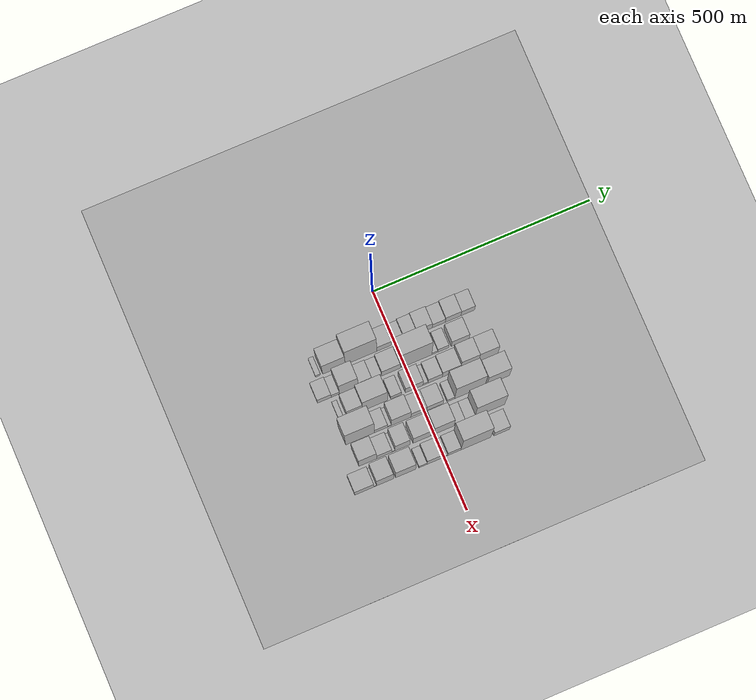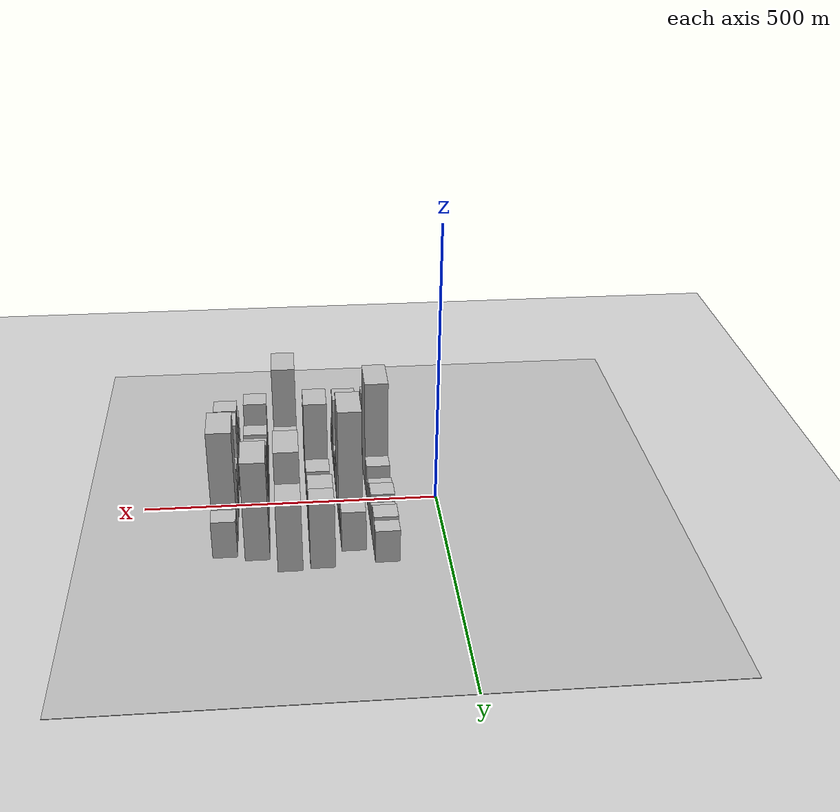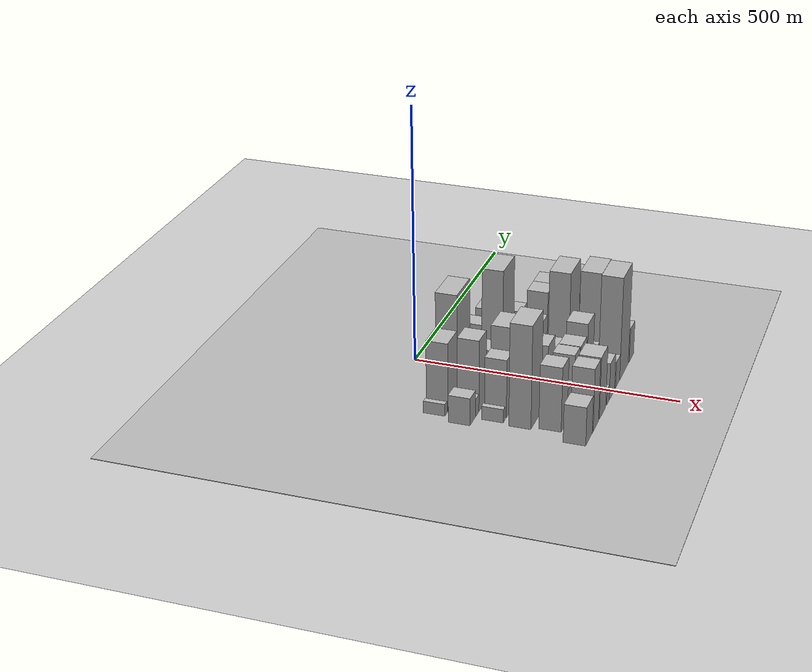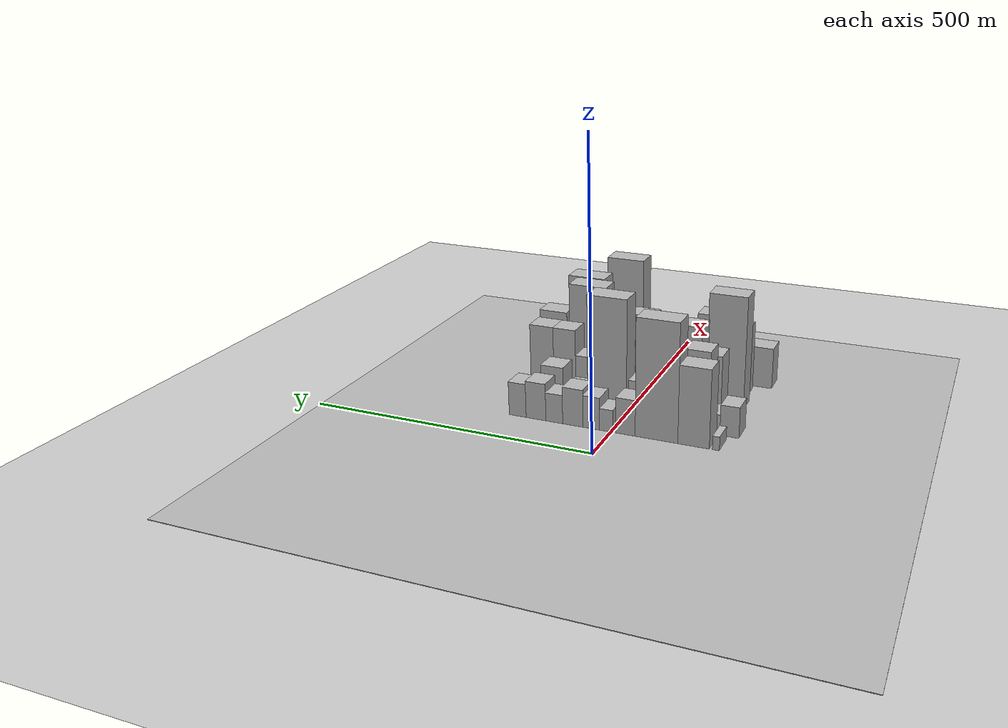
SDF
<sdf version="1.6">
 <world name="default">
  <include><name>ground_plane_1</name><uri>model://HANNAS_ground_plane</uri></include>
  <include>
   <name>ground_plane_2</name>
   <uri>model://HANNAS_ground_plane</uri>
   <pose>100 0 0  0 0 0</pose>
  </include>
  <model name="building_20">
   <static>1</static>
   <pose>100.0000 -175.5670 0 0.000000 0.000000 0.000000</pose>
   <link name="link">
    <pose>0 0 12.00 0 0 0</pose>
    <collision name="collision"><geometry><box><size>40.0000 11.2925 24.0000</size></box></geometry></collision>
    <visual name="visual">
     <cast_shadows>0</cast_shadows>
     <geometry><box><size>40.0000 11.2925 24.0000</size></box></geometry>
     <material>
      <script>
       <uri>model://HANNAS_wall/materials/scripts</uri>
       <uri>model://HANNAS_wall/materials/textures</uri>
       <name>vrc/HANNAS_wall</name>
      </script>
     </material>
    </visual>
   </link>
  </model>
  <model name="building_21">
   <static>1</static>
   <pose>100.0000 -139.0701 0 0.000000 0.000000 0.000000</pose>
   <link name="link">
    <pose>0 0 67.50 0 0 0</pose>
    <collision name="collision"><geometry><box><size>40.0000 51.7013 135.0000</size></box></geometry></collision>
    <visual name="visual">
     <cast_shadows>0</cast_shadows>
     <geometry><box><size>40.0000 51.7013 135.0000</size></box></geometry>
     <material>
      <script>
       <uri>model://HANNAS_wall/materials/scripts</uri>
       <uri>model://HANNAS_wall/materials/textures</uri>
       <name>vrc/HANNAS_wall</name>
      </script>
     </material>
    </visual>
   </link>
  </model>
  <model name="building_22">
   <static>1</static>
   <pose>100.0000 -77.4613 0 0.000000 0.000000 0.000000</pose>
   <link name="link">
    <pose>0 0 102.00 0 0 0</pose>
    <collision name="collision"><geometry><box><size>40.0000 71.5163 204.0000</size></box></geometry></collision>
    <visual name="visual">
     <cast_shadows>0</cast_shadows>
     <geometry><box><size>40.0000 71.5163 204.0000</size></box></geometry>
     <material>
      <script>
       <uri>model://HANNAS_wall/materials/scripts</uri>
       <uri>model://HANNAS_wall/materials/textures</uri>
       <name>vrc/HANNAS_wall</name>
      </script>
     </material>
    </visual>
   </link>
  </model>
  <model name="building_23">
   <static>1</static>
   <pose>100.0000 -24.9427 0 0.000000 0.000000 0.000000</pose>
   <link name="link">
    <pose>0 0 31.50 0 0 0</pose>
    <collision name="collision"><geometry><box><size>40.0000 33.5210 63.0000</size></box></geometry></collision>
    <visual name="visual">
     <cast_shadows>0</cast_shadows>
     <geometry><box><size>40.0000 33.5210 63.0000</size></box></geometry>
     <material>
      <script>
       <uri>model://HANNAS_wall/materials/scripts</uri>
       <uri>model://HANNAS_wall/materials/textures</uri>
       <name>vrc/HANNAS_wall</name>
      </script>
     </material>
    </visual>
   </link>
  </model>
  <model name="building_24">
   <static>1</static>
   <pose>100.0000 8.2083 0 0.000000 0.000000 0.000000</pose>
   <link name="link">
    <pose>0 0 19.50 0 0 0</pose>
    <collision name="collision"><geometry><box><size>40.0000 22.7810 39.0000</size></box></geometry></collision>
    <visual name="visual">
     <cast_shadows>0</cast_shadows>
     <geometry><box><size>40.0000 22.7810 39.0000</size></box></geometry>
     <material>
      <script>
       <uri>model://HANNAS_wall/materials/scripts</uri>
       <uri>model://HANNAS_wall/materials/textures</uri>
       <name>vrc/HANNAS_wall</name>
      </script>
     </material>
    </visual>
   </link>
  </model>
  <model name="building_25">
   <static>1</static>
   <pose>100.0000 34.2007 0 0.000000 0.000000 0.000000</pose>
   <link name="link">
    <pose>0 0 28.50 0 0 0</pose>
    <collision name="collision"><geometry><box><size>40.0000 29.2038 57.0000</size></box></geometry></collision>
    <visual name="visual">
     <cast_shadows>0</cast_shadows>
     <geometry><box><size>40.0000 29.2038 57.0000</size></box></geometry>
     <material>
      <script>
       <uri>model://HANNAS_wall/materials/scripts</uri>
       <uri>model://HANNAS_wall/materials/textures</uri>
       <name>vrc/HANNAS_wall</name>
      </script>
     </material>
    </visual>
   </link>
  </model>
  <model name="building_26">
   <static>1</static>
   <pose>100.0000 66.7584 0 0.000000 0.000000 0.000000</pose>
   <link name="link">
    <pose>0 0 33.00 0 0 0</pose>
    <collision name="collision"><geometry><box><size>40.0000 35.9115 66.0000</size></box></geometry></collision>
    <visual name="visual">
     <cast_shadows>0</cast_shadows>
     <geometry><box><size>40.0000 35.9115 66.0000</size></box></geometry>
     <material>
      <script>
       <uri>model://HANNAS_wall/materials/scripts</uri>
       <uri>model://HANNAS_wall/materials/textures</uri>
       <name>vrc/HANNAS_wall</name>
      </script>
     </material>
    </visual>
   </link>
  </model>
  <model name="building_27">
   <static>1</static>
   <pose>100.0000 99.8125 0 0.000000 0.000000 0.000000</pose>
   <link name="link">
    <pose>0 0 25.50 0 0 0</pose>
    <collision name="collision"><geometry><box><size>40.0000 30.1968 51.0000</size></box></geometry></collision>
    <visual name="visual">
     <cast_shadows>0</cast_shadows>
     <geometry><box><size>40.0000 30.1968 51.0000</size></box></geometry>
     <material>
      <script>
       <uri>model://HANNAS_wall/materials/scripts</uri>
       <uri>model://HANNAS_wall/materials/textures</uri>
       <name>vrc/HANNAS_wall</name>
      </script>
     </material>
    </visual>
   </link>
  </model>
  <model name="building_28">
   <static>1</static>
   <pose>100.0000 132.8469 0 0.000000 0.000000 0.000000</pose>
   <link name="link">
    <pose>0 0 33.00 0 0 0</pose>
    <collision name="collision"><geometry><box><size>40.0000 35.8721 66.0000</size></box></geometry></collision>
    <visual name="visual">
     <cast_shadows>0</cast_shadows>
     <geometry><box><size>40.0000 35.8721 66.0000</size></box></geometry>
     <material>
      <script>
       <uri>model://HANNAS_wall/materials/scripts</uri>
       <uri>model://HANNAS_wall/materials/textures</uri>
       <name>vrc/HANNAS_wall</name>
      </script>
     </material>
    </visual>
   </link>
  </model>
  <model name="building_29">
   <static>1</static>
   <pose>100.0000 166.3247 0 0.000000 0.000000 0.000000</pose>
   <link name="link">
    <pose>0 0 30.00 0 0 0</pose>
    <collision name="collision"><geometry><box><size>40.0000 31.0834 60.0000</size></box></geometry></collision>
    <visual name="visual">
     <cast_shadows>0</cast_shadows>
     <geometry><box><size>40.0000 31.0834 60.0000</size></box></geometry>
     <material>
      <script>
       <uri>model://HANNAS_wall/materials/scripts</uri>
       <uri>model://HANNAS_wall/materials/textures</uri>
       <name>vrc/HANNAS_wall</name>
      </script>
     </material>
    </visual>
   </link>
  </model>
  <model name="building_70">
   <static>1</static>
   <pose>152.0000 -182.9101 0 0.000000 0.000000 0.000000</pose>
   <link name="link">
    <pose>0 0 27.00 0 0 0</pose>
    <collision name="collision"><geometry><box><size>40.0000 31.5444 54.0000</size></box></geometry></collision>
    <visual name="visual">
     <cast_shadows>0</cast_shadows>
     <geometry><box><size>40.0000 31.5444 54.0000</size></box></geometry>
     <material>
      <script>
       <uri>model://HANNAS_wall/materials/scripts</uri>
       <uri>model://HANNAS_wall/materials/textures</uri>
       <name>vrc/HANNAS_wall</name>
      </script>
     </material>
    </visual>
   </link>
  </model>
  <model name="building_71">
   <static>1</static>
   <pose>152.0000 -157.8578 0 0.000000 0.000000 0.000000</pose>
   <link name="link">
    <pose>0 0 18.00 0 0 0</pose>
    <collision name="collision"><geometry><box><size>40.0000 18.5602 36.0000</size></box></geometry></collision>
    <visual name="visual">
     <cast_shadows>0</cast_shadows>
     <geometry><box><size>40.0000 18.5602 36.0000</size></box></geometry>
     <material>
      <script>
       <uri>model://HANNAS_wall/materials/scripts</uri>
       <uri>model://HANNAS_wall/materials/textures</uri>
       <name>vrc/HANNAS_wall</name>
      </script>
     </material>
    </visual>
   </link>
  </model>
  <model name="building_72">
   <static>1</static>
   <pose>152.0000 -127.2685 0 0.000000 0.000000 0.000000</pose>
   <link name="link">
    <pose>0 0 70.50 0 0 0</pose>
    <collision name="collision"><geometry><box><size>40.0000 42.6184 141.0000</size></box></geometry></collision>
    <visual name="visual">
     <cast_shadows>0</cast_shadows>
     <geometry><box><size>40.0000 42.6184 141.0000</size></box></geometry>
     <material>
      <script>
       <uri>model://HANNAS_wall/materials/scripts</uri>
       <uri>model://HANNAS_wall/materials/textures</uri>
       <name>vrc/HANNAS_wall</name>
      </script>
     </material>
    </visual>
   </link>
  </model>
  <model name="building_73">
   <static>1</static>
   <pose>152.0000 -90.6969 0 0.000000 0.000000 0.000000</pose>
   <link name="link">
    <pose>0 0 25.50 0 0 0</pose>
    <collision name="collision"><geometry><box><size>40.0000 30.5247 51.0000</size></box></geometry></collision>
    <visual name="visual">
     <cast_shadows>0</cast_shadows>
     <geometry><box><size>40.0000 30.5247 51.0000</size></box></geometry>
     <material>
      <script>
       <uri>model://HANNAS_wall/materials/scripts</uri>
       <uri>model://HANNAS_wall/materials/textures</uri>
       <name>vrc/HANNAS_wall</name>
      </script>
     </material>
    </visual>
   </link>
  </model>
  <model name="building_74">
   <static>1</static>
   <pose>152.0000 -64.0057 0 0.000000 0.000000 0.000000</pose>
   <link name="link">
    <pose>0 0 19.50 0 0 0</pose>
    <collision name="collision"><geometry><box><size>40.0000 22.8576 39.0000</size></box></geometry></collision>
    <visual name="visual">
     <cast_shadows>0</cast_shadows>
     <geometry><box><size>40.0000 22.8576 39.0000</size></box></geometry>
     <material>
      <script>
       <uri>model://HANNAS_wall/materials/scripts</uri>
       <uri>model://HANNAS_wall/materials/textures</uri>
       <name>vrc/HANNAS_wall</name>
      </script>
     </material>
    </visual>
   </link>
  </model>
  <model name="building_75">
   <static>1</static>
   <pose>152.0000 -31.5033 0 0.000000 0.000000 0.000000</pose>
   <link name="link">
    <pose>0 0 36.00 0 0 0</pose>
    <collision name="collision"><geometry><box><size>40.0000 42.1472 72.0000</size></box></geometry></collision>
    <visual name="visual">
     <cast_shadows>0</cast_shadows>
     <geometry><box><size>40.0000 42.1472 72.0000</size></box></geometry>
     <material>
      <script>
       <uri>model://HANNAS_wall/materials/scripts</uri>
       <uri>model://HANNAS_wall/materials/textures</uri>
       <name>vrc/HANNAS_wall</name>
      </script>
     </material>
    </visual>
   </link>
  </model>
  <model name="building_76">
   <static>1</static>
   <pose>152.0000 27.0588 0 0.000000 0.000000 0.000000</pose>
   <link name="link">
    <pose>0 0 105.00 0 0 0</pose>
    <collision name="collision"><geometry><box><size>40.0000 68.9771 210.0000</size></box></geometry></collision>
    <visual name="visual">
     <cast_shadows>0</cast_shadows>
     <geometry><box><size>40.0000 68.9771 210.0000</size></box></geometry>
     <material>
      <script>
       <uri>model://HANNAS_wall/materials/scripts</uri>
       <uri>model://HANNAS_wall/materials/textures</uri>
       <name>vrc/HANNAS_wall</name>
      </script>
     </material>
    </visual>
   </link>
  </model>
  <model name="building_77">
   <static>1</static>
   <pose>152.0000 68.2634 0 0.000000 0.000000 0.000000</pose>
   <link name="link">
    <pose>0 0 13.50 0 0 0</pose>
    <collision name="collision"><geometry><box><size>40.0000 13.4322 27.0000</size></box></geometry></collision>
    <visual name="visual">
     <cast_shadows>0</cast_shadows>
     <geometry><box><size>40.0000 13.4322 27.0000</size></box></geometry>
     <material>
      <script>
       <uri>model://HANNAS_wall/materials/scripts</uri>
       <uri>model://HANNAS_wall/materials/textures</uri>
       <name>vrc/HANNAS_wall</name>
      </script>
     </material>
    </visual>
   </link>
  </model>
  <model name="building_78">
   <static>1</static>
   <pose>152.0000 87.5955 0 0.000000 0.000000 0.000000</pose>
   <link name="link">
    <pose>0 0 22.50 0 0 0</pose>
    <collision name="collision"><geometry><box><size>40.0000 25.2320 45.0000</size></box></geometry></collision>
    <visual name="visual">
     <cast_shadows>0</cast_shadows>
     <geometry><box><size>40.0000 25.2320 45.0000</size></box></geometry>
     <material>
      <script>
       <uri>model://HANNAS_wall/materials/scripts</uri>
       <uri>model://HANNAS_wall/materials/textures</uri>
       <name>vrc/HANNAS_wall</name>
      </script>
     </material>
    </visual>
   </link>
  </model>
  <model name="building_79">
   <static>1</static>
   <pose>152.0000 126.4594 0 0.000000 0.000000 0.000000</pose>
   <link name="link">
    <pose>0 0 37.50 0 0 0</pose>
    <collision name="collision"><geometry><box><size>40.0000 40.4957 75.0000</size></box></geometry></collision>
    <visual name="visual">
     <cast_shadows>0</cast_shadows>
     <geometry><box><size>40.0000 40.4957 75.0000</size></box></geometry>
     <material>
      <script>
       <uri>model://HANNAS_wall/materials/scripts</uri>
       <uri>model://HANNAS_wall/materials/textures</uri>
       <name>vrc/HANNAS_wall</name>
      </script>
     </material>
    </visual>
   </link>
  </model>
  <model name="building_123">
   <static>1</static>
   <pose>204.0000 -165.9236 0 0.000000 0.000000 0.000000</pose>
   <link name="link">
    <pose>0 0 13.50 0 0 0</pose>
    <collision name="collision"><geometry><box><size>40.0000 11.1537 27.0000</size></box></geometry></collision>
    <visual name="visual">
     <cast_shadows>0</cast_shadows>
     <geometry><box><size>40.0000 11.1537 27.0000</size></box></geometry>
     <material>
      <script>
       <uri>model://HANNAS_wall/materials/scripts</uri>
       <uri>model://HANNAS_wall/materials/textures</uri>
       <name>vrc/HANNAS_wall</name>
      </script>
     </material>
    </visual>
   </link>
  </model>
  <model name="building_124">
   <static>1</static>
   <pose>204.0000 -135.6167 0 0.000000 0.000000 0.000000</pose>
   <link name="link">
    <pose>0 0 57.00 0 0 0</pose>
    <collision name="collision"><geometry><box><size>40.0000 35.4601 114.0000</size></box></geometry></collision>
    <visual name="visual">
     <cast_shadows>0</cast_shadows>
     <geometry><box><size>40.0000 35.4601 114.0000</size></box></geometry>
     <material>
      <script>
       <uri>model://HANNAS_wall/materials/scripts</uri>
       <uri>model://HANNAS_wall/materials/textures</uri>
       <name>vrc/HANNAS_wall</name>
      </script>
     </material>
    </visual>
   </link>
  </model>
  <model name="building_125">
   <static>1</static>
   <pose>204.0000 -89.6528 0 0.000000 0.000000 0.000000</pose>
   <link name="link">
    <pose>0 0 79.50 0 0 0</pose>
    <collision name="collision"><geometry><box><size>40.0000 56.4677 159.0000</size></box></geometry></collision>
    <visual name="visual">
     <cast_shadows>0</cast_shadows>
     <geometry><box><size>40.0000 56.4677 159.0000</size></box></geometry>
     <material>
      <script>
       <uri>model://HANNAS_wall/materials/scripts</uri>
       <uri>model://HANNAS_wall/materials/textures</uri>
       <name>vrc/HANNAS_wall</name>
      </script>
     </material>
    </visual>
   </link>
  </model>
  <model name="building_126">
   <static>1</static>
   <pose>204.0000 -42.1306 0 0.000000 0.000000 0.000000</pose>
   <link name="link">
    <pose>0 0 21.00 0 0 0</pose>
    <collision name="collision"><geometry><box><size>40.0000 24.5767 42.0000</size></box></geometry></collision>
    <visual name="visual">
     <cast_shadows>0</cast_shadows>
     <geometry><box><size>40.0000 24.5767 42.0000</size></box></geometry>
     <material>
      <script>
       <uri>model://HANNAS_wall/materials/scripts</uri>
       <uri>model://HANNAS_wall/materials/textures</uri>
       <name>vrc/HANNAS_wall</name>
      </script>
     </material>
    </visual>
   </link>
  </model>
  <model name="building_127">
   <static>1</static>
   <pose>204.0000 -0.7295 0 0.000000 0.000000 0.000000</pose>
   <link name="link">
    <pose>0 0 37.50 0 0 0</pose>
    <collision name="collision"><geometry><box><size>40.0000 40.2254 75.0000</size></box></geometry></collision>
    <visual name="visual">
     <cast_shadows>0</cast_shadows>
     <geometry><box><size>40.0000 40.2254 75.0000</size></box></geometry>
     <material>
      <script>
       <uri>model://HANNAS_wall/materials/scripts</uri>
       <uri>model://HANNAS_wall/materials/textures</uri>
       <name>vrc/HANNAS_wall</name>
      </script>
     </material>
    </visual>
   </link>
  </model>
  <model name="building_128">
   <static>1</static>
   <pose>204.0000 25.1600 0 0.000000 0.000000 0.000000</pose>
   <link name="link">
    <pose>0 0 13.50 0 0 0</pose>
    <collision name="collision"><geometry><box><size>40.0000 11.5536 27.0000</size></box></geometry></collision>
    <visual name="visual">
     <cast_shadows>0</cast_shadows>
     <geometry><box><size>40.0000 11.5536 27.0000</size></box></geometry>
     <material>
      <script>
       <uri>model://HANNAS_wall/materials/scripts</uri>
       <uri>model://HANNAS_wall/materials/textures</uri>
       <name>vrc/HANNAS_wall</name>
      </script>
     </material>
    </visual>
   </link>
  </model>
  <model name="building_129">
   <static>1</static>
   <pose>204.0000 47.0754 0 0.000000 0.000000 0.000000</pose>
   <link name="link">
    <pose>0 0 30.00 0 0 0</pose>
    <collision name="collision"><geometry><box><size>40.0000 32.2773 60.0000</size></box></geometry></collision>
    <visual name="visual">
     <cast_shadows>0</cast_shadows>
     <geometry><box><size>40.0000 32.2773 60.0000</size></box></geometry>
     <material>
      <script>
       <uri>model://HANNAS_wall/materials/scripts</uri>
       <uri>model://HANNAS_wall/materials/textures</uri>
       <name>vrc/HANNAS_wall</name>
      </script>
     </material>
    </visual>
   </link>
  </model>
  <model name="building_130">
   <static>1</static>
   <pose>204.0000 84.2514 0 0.000000 0.000000 0.000000</pose>
   <link name="link">
    <pose>0 0 39.00 0 0 0</pose>
    <collision name="collision"><geometry><box><size>40.0000 42.0747 78.0000</size></box></geometry></collision>
    <visual name="visual">
     <cast_shadows>0</cast_shadows>
     <geometry><box><size>40.0000 42.0747 78.0000</size></box></geometry>
     <material>
      <script>
       <uri>model://HANNAS_wall/materials/scripts</uri>
       <uri>model://HANNAS_wall/materials/textures</uri>
       <name>vrc/HANNAS_wall</name>
      </script>
     </material>
    </visual>
   </link>
  </model>
  <model name="building_131">
   <static>1</static>
   <pose>204.0000 125.8388 0 0.000000 0.000000 0.000000</pose>
   <link name="link">
    <pose>0 0 61.50 0 0 0</pose>
    <collision name="collision"><geometry><box><size>40.0000 41.1000 123.0000</size></box></geometry></collision>
    <visual name="visual">
     <cast_shadows>0</cast_shadows>
     <geometry><box><size>40.0000 41.1000 123.0000</size></box></geometry>
     <material>
      <script>
       <uri>model://HANNAS_wall/materials/scripts</uri>
       <uri>model://HANNAS_wall/materials/textures</uri>
       <name>vrc/HANNAS_wall</name>
      </script>
     </material>
    </visual>
   </link>
  </model>
  <model name="building_132">
   <static>1</static>
   <pose>204.0000 168.1521 0 0.000000 0.000000 0.000000</pose>
   <link name="link">
    <pose>0 0 61.50 0 0 0</pose>
    <collision name="collision"><geometry><box><size>40.0000 43.5266 123.0000</size></box></geometry></collision>
    <visual name="visual">
     <cast_shadows>0</cast_shadows>
     <geometry><box><size>40.0000 43.5266 123.0000</size></box></geometry>
     <material>
      <script>
       <uri>model://HANNAS_wall/materials/scripts</uri>
       <uri>model://HANNAS_wall/materials/textures</uri>
       <name>vrc/HANNAS_wall</name>
      </script>
     </material>
    </visual>
   </link>
  </model>
  <model name="building_174">
   <static>1</static>
   <pose>256.0000 -145.7598 0 0.000000 0.000000 0.000000</pose>
   <link name="link">
    <pose>0 0 100.50 0 0 0</pose>
    <collision name="collision"><geometry><box><size>40.0000 65.3820 201.0000</size></box></geometry></collision>
    <visual name="visual">
     <cast_shadows>0</cast_shadows>
     <geometry><box><size>40.0000 65.3820 201.0000</size></box></geometry>
     <material>
      <script>
       <uri>model://HANNAS_wall/materials/scripts</uri>
       <uri>model://HANNAS_wall/materials/textures</uri>
       <name>vrc/HANNAS_wall</name>
      </script>
     </material>
    </visual>
   </link>
  </model>
  <model name="building_175">
   <static>1</static>
   <pose>256.0000 -98.2858 0 0.000000 0.000000 0.000000</pose>
   <link name="link">
    <pose>0 0 25.50 0 0 0</pose>
    <collision name="collision"><geometry><box><size>40.0000 29.5660 51.0000</size></box></geometry></collision>
    <visual name="visual">
     <cast_shadows>0</cast_shadows>
     <geometry><box><size>40.0000 29.5660 51.0000</size></box></geometry>
     <material>
      <script>
       <uri>model://HANNAS_wall/materials/scripts</uri>
       <uri>model://HANNAS_wall/materials/textures</uri>
       <name>vrc/HANNAS_wall</name>
      </script>
     </material>
    </visual>
   </link>
  </model>
  <model name="building_176">
   <static>1</static>
   <pose>256.0000 -79.0485 0 0.000000 0.000000 0.000000</pose>
   <link name="link">
    <pose>0 0 9.00 0 0 0</pose>
    <collision name="collision"><geometry><box><size>40.0000 8.9086 18.0000</size></box></geometry></collision>
    <visual name="visual">
     <cast_shadows>0</cast_shadows>
     <geometry><box><size>40.0000 8.9086 18.0000</size></box></geometry>
     <material>
      <script>
       <uri>model://HANNAS_wall/materials/scripts</uri>
       <uri>model://HANNAS_wall/materials/textures</uri>
       <name>vrc/HANNAS_wall</name>
      </script>
     </material>
    </visual>
   </link>
  </model>
  <model name="building_177">
   <static>1</static>
   <pose>256.0000 -52.5292 0 0.000000 0.000000 0.000000</pose>
   <link name="link">
    <pose>0 0 55.50 0 0 0</pose>
    <collision name="collision"><geometry><box><size>40.0000 44.1301 111.0000</size></box></geometry></collision>
    <visual name="visual">
     <cast_shadows>0</cast_shadows>
     <geometry><box><size>40.0000 44.1301 111.0000</size></box></geometry>
     <material>
      <script>
       <uri>model://HANNAS_wall/materials/scripts</uri>
       <uri>model://HANNAS_wall/materials/textures</uri>
       <name>vrc/HANNAS_wall</name>
      </script>
     </material>
    </visual>
   </link>
  </model>
  <model name="building_178">
   <static>1</static>
   <pose>256.0000 -12.3557 0 0.000000 0.000000 0.000000</pose>
   <link name="link">
    <pose>0 0 34.50 0 0 0</pose>
    <collision name="collision"><geometry><box><size>40.0000 36.2168 69.0000</size></box></geometry></collision>
    <visual name="visual">
     <cast_shadows>0</cast_shadows>
     <geometry><box><size>40.0000 36.2168 69.0000</size></box></geometry>
     <material>
      <script>
       <uri>model://HANNAS_wall/materials/scripts</uri>
       <uri>model://HANNAS_wall/materials/textures</uri>
       <name>vrc/HANNAS_wall</name>
      </script>
     </material>
    </visual>
   </link>
  </model>
  <model name="building_179">
   <static>1</static>
   <pose>256.0000 24.3312 0 0.000000 0.000000 0.000000</pose>
   <link name="link">
    <pose>0 0 34.50 0 0 0</pose>
    <collision name="collision"><geometry><box><size>40.0000 37.1570 69.0000</size></box></geometry></collision>
    <visual name="visual">
     <cast_shadows>0</cast_shadows>
     <geometry><box><size>40.0000 37.1570 69.0000</size></box></geometry>
     <material>
      <script>
       <uri>model://HANNAS_wall/materials/scripts</uri>
       <uri>model://HANNAS_wall/materials/textures</uri>
       <name>vrc/HANNAS_wall</name>
      </script>
     </material>
    </visual>
   </link>
  </model>
  <model name="building_180">
   <static>1</static>
   <pose>256.0000 60.5442 0 0.000000 0.000000 0.000000</pose>
   <link name="link">
    <pose>0 0 16.50 0 0 0</pose>
    <collision name="collision"><geometry><box><size>40.0000 17.2689 33.0000</size></box></geometry></collision>
    <visual name="visual">
     <cast_shadows>0</cast_shadows>
     <geometry><box><size>40.0000 17.2689 33.0000</size></box></geometry>
     <material>
      <script>
       <uri>model://HANNAS_wall/materials/scripts</uri>
       <uri>model://HANNAS_wall/materials/textures</uri>
       <name>vrc/HANNAS_wall</name>
      </script>
     </material>
    </visual>
   </link>
  </model>
  <model name="building_181">
   <static>1</static>
   <pose>256.0000 103.5384 0 0.000000 0.000000 0.000000</pose>
   <link name="link">
    <pose>0 0 93.00 0 0 0</pose>
    <collision name="collision"><geometry><box><size>40.0000 68.7195 186.0000</size></box></geometry></collision>
    <visual name="visual">
     <cast_shadows>0</cast_shadows>
     <geometry><box><size>40.0000 68.7195 186.0000</size></box></geometry>
     <material>
      <script>
       <uri>model://HANNAS_wall/materials/scripts</uri>
       <uri>model://HANNAS_wall/materials/textures</uri>
       <name>vrc/HANNAS_wall</name>
      </script>
     </material>
    </visual>
   </link>
  </model>
  <model name="building_182">
   <static>1</static>
   <pose>256.0000 168.5689 0 0.000000 0.000000 0.000000</pose>
   <link name="link">
    <pose>0 0 66.00 0 0 0</pose>
    <collision name="collision"><geometry><box><size>40.0000 51.3417 132.0000</size></box></geometry></collision>
    <visual name="visual">
     <cast_shadows>0</cast_shadows>
     <geometry><box><size>40.0000 51.3417 132.0000</size></box></geometry>
     <material>
      <script>
       <uri>model://HANNAS_wall/materials/scripts</uri>
       <uri>model://HANNAS_wall/materials/textures</uri>
       <name>vrc/HANNAS_wall</name>
      </script>
     </material>
    </visual>
   </link>
  </model>
  <model name="building_222">
   <static>1</static>
   <pose>308.0000 -150.4972 0 0.000000 0.000000 0.000000</pose>
   <link name="link">
    <pose>0 0 63.00 0 0 0</pose>
    <collision name="collision"><geometry><box><size>40.0000 40.2885 126.0000</size></box></geometry></collision>
    <visual name="visual">
     <cast_shadows>0</cast_shadows>
     <geometry><box><size>40.0000 40.2885 126.0000</size></box></geometry>
     <material>
      <script>
       <uri>model://HANNAS_wall/materials/scripts</uri>
       <uri>model://HANNAS_wall/materials/textures</uri>
       <name>vrc/HANNAS_wall</name>
      </script>
     </material>
    </visual>
   </link>
  </model>
  <model name="building_223">
   <static>1</static>
   <pose>308.0000 -113.2765 0 0.000000 0.000000 0.000000</pose>
   <link name="link">
    <pose>0 0 31.50 0 0 0</pose>
    <collision name="collision"><geometry><box><size>40.0000 34.1528 63.0000</size></box></geometry></collision>
    <visual name="visual">
     <cast_shadows>0</cast_shadows>
     <geometry><box><size>40.0000 34.1528 63.0000</size></box></geometry>
     <material>
      <script>
       <uri>model://HANNAS_wall/materials/scripts</uri>
       <uri>model://HANNAS_wall/materials/textures</uri>
       <name>vrc/HANNAS_wall</name>
      </script>
     </material>
    </visual>
   </link>
  </model>
  <model name="building_224">
   <static>1</static>
   <pose>308.0000 -92.3622 0 0.000000 0.000000 0.000000</pose>
   <link name="link">
    <pose>0 0 9.00 0 0 0</pose>
    <collision name="collision"><geometry><box><size>40.0000 7.6757 18.0000</size></box></geometry></collision>
    <visual name="visual">
     <cast_shadows>0</cast_shadows>
     <geometry><box><size>40.0000 7.6757 18.0000</size></box></geometry>
     <material>
      <script>
       <uri>model://HANNAS_wall/materials/scripts</uri>
       <uri>model://HANNAS_wall/materials/textures</uri>
       <name>vrc/HANNAS_wall</name>
      </script>
     </material>
    </visual>
   </link>
  </model>
  <model name="building_225">
   <static>1</static>
   <pose>308.0000 -71.6565 0 0.000000 0.000000 0.000000</pose>
   <link name="link">
    <pose>0 0 54.00 0 0 0</pose>
    <collision name="collision"><geometry><box><size>40.0000 33.7355 108.0000</size></box></geometry></collision>
    <visual name="visual">
     <cast_shadows>0</cast_shadows>
     <geometry><box><size>40.0000 33.7355 108.0000</size></box></geometry>
     <material>
      <script>
       <uri>model://HANNAS_wall/materials/scripts</uri>
       <uri>model://HANNAS_wall/materials/textures</uri>
       <name>vrc/HANNAS_wall</name>
      </script>
     </material>
    </visual>
   </link>
  </model>
  <model name="building_226">
   <static>1</static>
   <pose>308.0000 -27.6774 0 0.000000 0.000000 0.000000</pose>
   <link name="link">
    <pose>0 0 52.50 0 0 0</pose>
    <collision name="collision"><geometry><box><size>40.0000 40.2228 105.0000</size></box></geometry></collision>
    <visual name="visual">
     <cast_shadows>0</cast_shadows>
     <geometry><box><size>40.0000 40.2228 105.0000</size></box></geometry>
     <material>
      <script>
       <uri>model://HANNAS_wall/materials/scripts</uri>
       <uri>model://HANNAS_wall/materials/textures</uri>
       <name>vrc/HANNAS_wall</name>
      </script>
     </material>
    </visual>
   </link>
  </model>
  <model name="building_227">
   <static>1</static>
   <pose>308.0000 -3.7767 0 0.000000 0.000000 0.000000</pose>
   <link name="link">
    <pose>0 0 9.00 0 0 0</pose>
    <collision name="collision"><geometry><box><size>40.0000 7.5785 18.0000</size></box></geometry></collision>
    <visual name="visual">
     <cast_shadows>0</cast_shadows>
     <geometry><box><size>40.0000 7.5785 18.0000</size></box></geometry>
     <material>
      <script>
       <uri>model://HANNAS_wall/materials/scripts</uri>
       <uri>model://HANNAS_wall/materials/textures</uri>
       <name>vrc/HANNAS_wall</name>
      </script>
     </material>
    </visual>
   </link>
  </model>
  <model name="building_228">
   <static>1</static>
   <pose>308.0000 22.7060 0 0.000000 0.000000 0.000000</pose>
   <link name="link">
    <pose>0 0 63.00 0 0 0</pose>
    <collision name="collision"><geometry><box><size>40.0000 45.3870 126.0000</size></box></geometry></collision>
    <visual name="visual">
     <cast_shadows>0</cast_shadows>
     <geometry><box><size>40.0000 45.3870 126.0000</size></box></geometry>
     <material>
      <script>
       <uri>model://HANNAS_wall/materials/scripts</uri>
       <uri>model://HANNAS_wall/materials/textures</uri>
       <name>vrc/HANNAS_wall</name>
      </script>
     </material>
    </visual>
   </link>
  </model>
  <model name="building_229">
   <static>1</static>
   <pose>308.0000 57.6077 0 0.000000 0.000000 0.000000</pose>
   <link name="link">
    <pose>0 0 22.50 0 0 0</pose>
    <collision name="collision"><geometry><box><size>40.0000 24.4164 45.0000</size></box></geometry></collision>
    <visual name="visual">
     <cast_shadows>0</cast_shadows>
     <geometry><box><size>40.0000 24.4164 45.0000</size></box></geometry>
     <material>
      <script>
       <uri>model://HANNAS_wall/materials/scripts</uri>
       <uri>model://HANNAS_wall/materials/textures</uri>
       <name>vrc/HANNAS_wall</name>
      </script>
     </material>
    </visual>
   </link>
  </model>
  <model name="building_230">
   <static>1</static>
   <pose>308.0000 81.2144 0 0.000000 0.000000 0.000000</pose>
   <link name="link">
    <pose>0 0 22.50 0 0 0</pose>
    <collision name="collision"><geometry><box><size>40.0000 22.7971 45.0000</size></box></geometry></collision>
    <visual name="visual">
     <cast_shadows>0</cast_shadows>
     <geometry><box><size>40.0000 22.7971 45.0000</size></box></geometry>
     <material>
      <script>
       <uri>model://HANNAS_wall/materials/scripts</uri>
       <uri>model://HANNAS_wall/materials/textures</uri>
       <name>vrc/HANNAS_wall</name>
      </script>
     </material>
    </visual>
   </link>
  </model>
  <model name="building_231">
   <static>1</static>
   <pose>308.0000 126.5860 0 0.000000 0.000000 0.000000</pose>
   <link name="link">
    <pose>0 0 91.50 0 0 0</pose>
    <collision name="collision"><geometry><box><size>40.0000 67.9460 183.0000</size></box></geometry></collision>
    <visual name="visual">
     <cast_shadows>0</cast_shadows>
     <geometry><box><size>40.0000 67.9460 183.0000</size></box></geometry>
     <material>
      <script>
       <uri>model://HANNAS_wall/materials/scripts</uri>
       <uri>model://HANNAS_wall/materials/textures</uri>
       <name>vrc/HANNAS_wall</name>
      </script>
     </material>
    </visual>
   </link>
  </model>
  <model name="building_267">
   <static>1</static>
   <pose>360.0000 -180.3667 0 0.000000 0.000000 0.000000</pose>
   <link name="link">
    <pose>0 0 37.50 0 0 0</pose>
    <collision name="collision"><geometry><box><size>40.0000 43.3938 75.0000</size></box></geometry></collision>
    <visual name="visual">
     <cast_shadows>0</cast_shadows>
     <geometry><box><size>40.0000 43.3938 75.0000</size></box></geometry>
     <material>
      <script>
       <uri>model://HANNAS_wall/materials/scripts</uri>
       <uri>model://HANNAS_wall/materials/textures</uri>
       <name>vrc/HANNAS_wall</name>
      </script>
     </material>
    </visual>
   </link>
  </model>
  <model name="building_268">
   <static>1</static>
   <pose>360.0000 -155.6695 0 0.000000 0.000000 0.000000</pose>
   <link name="link">
    <pose>0 0 7.50 0 0 0</pose>
    <collision name="collision"><geometry><box><size>40.0000 6.0005 15.0000</size></box></geometry></collision>
    <visual name="visual">
     <cast_shadows>0</cast_shadows>
     <geometry><box><size>40.0000 6.0005 15.0000</size></box></geometry>
     <material>
      <script>
       <uri>model://HANNAS_wall/materials/scripts</uri>
       <uri>model://HANNAS_wall/materials/textures</uri>
       <name>vrc/HANNAS_wall</name>
      </script>
     </material>
    </visual>
   </link>
  </model>
  <model name="building_269">
   <static>1</static>
   <pose>360.0000 -133.6186 0 0.000000 0.000000 0.000000</pose>
   <link name="link">
    <pose>0 0 61.50 0 0 0</pose>
    <collision name="collision"><geometry><box><size>40.0000 38.1014 123.0000</size></box></geometry></collision>
    <visual name="visual">
     <cast_shadows>0</cast_shadows>
     <geometry><box><size>40.0000 38.1014 123.0000</size></box></geometry>
     <material>
      <script>
       <uri>model://HANNAS_wall/materials/scripts</uri>
       <uri>model://HANNAS_wall/materials/textures</uri>
       <name>vrc/HANNAS_wall</name>
      </script>
     </material>
    </visual>
   </link>
  </model>
  <model name="building_270">
   <static>1</static>
   <pose>360.0000 -86.7126 0 0.000000 0.000000 0.000000</pose>
   <link name="link">
    <pose>0 0 61.50 0 0 0</pose>
    <collision name="collision"><geometry><box><size>40.0000 45.7107 123.0000</size></box></geometry></collision>
    <visual name="visual">
     <cast_shadows>0</cast_shadows>
     <geometry><box><size>40.0000 45.7107 123.0000</size></box></geometry>
     <material>
      <script>
       <uri>model://HANNAS_wall/materials/scripts</uri>
       <uri>model://HANNAS_wall/materials/textures</uri>
       <name>vrc/HANNAS_wall</name>
      </script>
     </material>
    </visual>
   </link>
  </model>
  <model name="building_271">
   <static>1</static>
   <pose>360.0000 -47.5409 0 0.000000 0.000000 0.000000</pose>
   <link name="link">
    <pose>0 0 16.50 0 0 0</pose>
    <collision name="collision"><geometry><box><size>40.0000 18.6327 33.0000</size></box></geometry></collision>
    <visual name="visual">
     <cast_shadows>0</cast_shadows>
     <geometry><box><size>40.0000 18.6327 33.0000</size></box></geometry>
     <material>
      <script>
       <uri>model://HANNAS_wall/materials/scripts</uri>
       <uri>model://HANNAS_wall/materials/textures</uri>
       <name>vrc/HANNAS_wall</name>
      </script>
     </material>
    </visual>
   </link>
  </model>
  <model name="building_272">
   <static>1</static>
   <pose>360.0000 -18.9346 0 0.000000 0.000000 0.000000</pose>
   <link name="link">
    <pose>0 0 37.50 0 0 0</pose>
    <collision name="collision"><geometry><box><size>40.0000 38.5800 75.0000</size></box></geometry></collision>
    <visual name="visual">
     <cast_shadows>0</cast_shadows>
     <geometry><box><size>40.0000 38.5800 75.0000</size></box></geometry>
     <material>
      <script>
       <uri>model://HANNAS_wall/materials/scripts</uri>
       <uri>model://HANNAS_wall/materials/textures</uri>
       <name>vrc/HANNAS_wall</name>
      </script>
     </material>
    </visual>
   </link>
  </model>
  <model name="building_273">
   <static>1</static>
   <pose>360.0000 4.5232 0 0.000000 0.000000 0.000000</pose>
   <link name="link">
    <pose>0 0 9.00 0 0 0</pose>
    <collision name="collision"><geometry><box><size>40.0000 8.3355 18.0000</size></box></geometry></collision>
    <visual name="visual">
     <cast_shadows>0</cast_shadows>
     <geometry><box><size>40.0000 8.3355 18.0000</size></box></geometry>
     <material>
      <script>
       <uri>model://HANNAS_wall/materials/scripts</uri>
       <uri>model://HANNAS_wall/materials/textures</uri>
       <name>vrc/HANNAS_wall</name>
      </script>
     </material>
    </visual>
   </link>
  </model>
  <model name="building_274">
   <static>1</static>
   <pose>360.0000 23.7286 0 0.000000 0.000000 0.000000</pose>
   <link name="link">
    <pose>0 0 27.00 0 0 0</pose>
    <collision name="collision"><geometry><box><size>40.0000 30.0753 54.0000</size></box></geometry></collision>
    <visual name="visual">
     <cast_shadows>0</cast_shadows>
     <geometry><box><size>40.0000 30.0753 54.0000</size></box></geometry>
     <material>
      <script>
       <uri>model://HANNAS_wall/materials/scripts</uri>
       <uri>model://HANNAS_wall/materials/textures</uri>
       <name>vrc/HANNAS_wall</name>
      </script>
     </material>
    </visual>
   </link>
  </model>
  <model name="building_275">
   <static>1</static>
   <pose>360.0000 72.6463 0 0.000000 0.000000 0.000000</pose>
   <link name="link">
    <pose>0 0 103.50 0 0 0</pose>
    <collision name="collision"><geometry><box><size>40.0000 67.7602 207.0000</size></box></geometry></collision>
    <visual name="visual">
     <cast_shadows>0</cast_shadows>
     <geometry><box><size>40.0000 67.7602 207.0000</size></box></geometry>
     <material>
      <script>
       <uri>model://HANNAS_wall/materials/scripts</uri>
       <uri>model://HANNAS_wall/materials/textures</uri>
       <name>vrc/HANNAS_wall</name>
      </script>
     </material>
    </visual>
   </link>
  </model>
  <model name="building_276">
   <static>1</static>
   <pose>360.0000 131.2558 0 0.000000 0.000000 0.000000</pose>
   <link name="link">
    <pose>0 0 34.50 0 0 0</pose>
    <collision name="collision"><geometry><box><size>40.0000 35.4586 69.0000</size></box></geometry></collision>
    <visual name="visual">
     <cast_shadows>0</cast_shadows>
     <geometry><box><size>40.0000 35.4586 69.0000</size></box></geometry>
     <material>
      <script>
       <uri>model://HANNAS_wall/materials/scripts</uri>
       <uri>model://HANNAS_wall/materials/textures</uri>
       <name>vrc/HANNAS_wall</name>
      </script>
     </material>
    </visual>
   </link>
  </model>
 </world>
</sdf>
